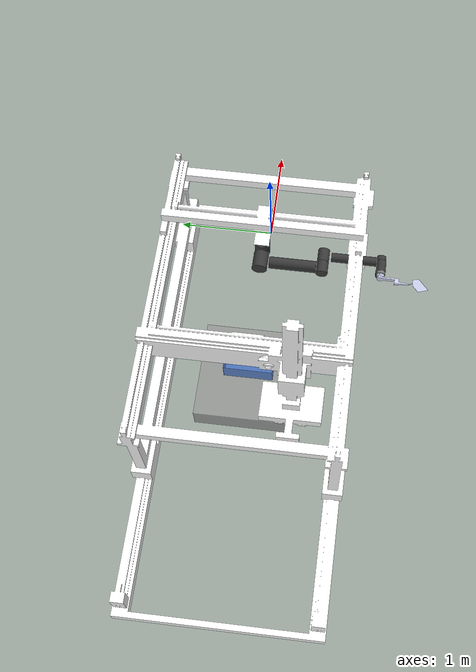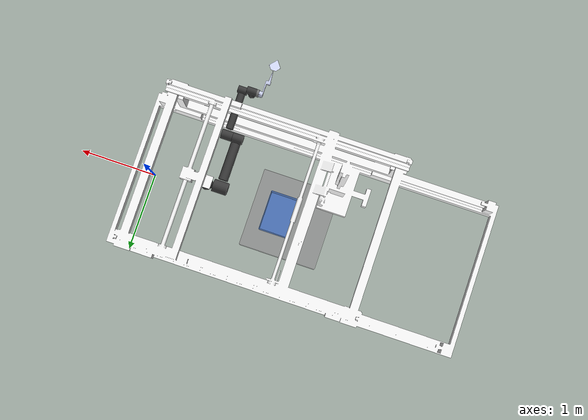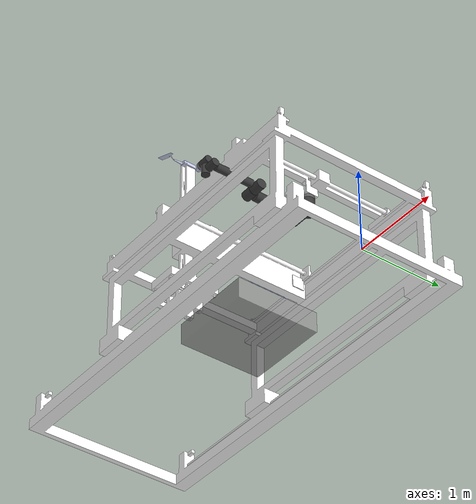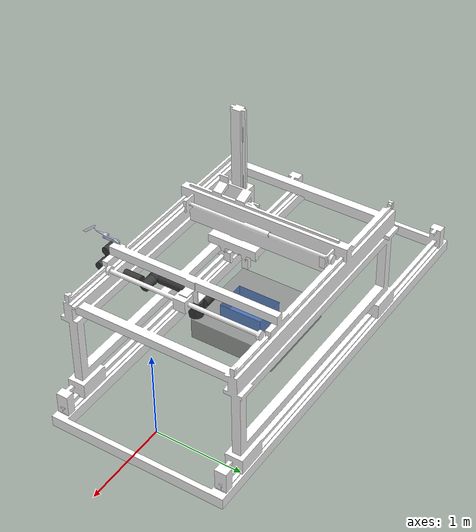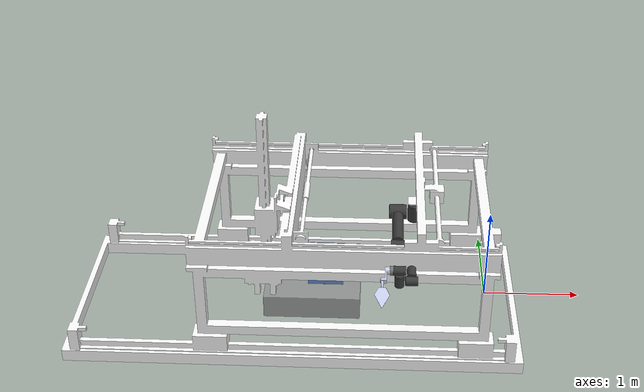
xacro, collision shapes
<?xml version="1.0"?>
<robot name="assembly" xmlns:xacro="http://www.ros.org/wiki/xacro">
  <xacro:arg name="mesh_root" default="package://assembly_rtfg_cpp/urdf/meshes" />
  <xacro:arg name="hardware_backend" default="fake" />

  <material name="block_gray">
    <color rgba="0.6 0.6 0.6 0.8"/>
  </material>
  <material name="basin_blue">
    <color rgba="0.2 0.4 0.8 0.7"/>
  </material>

  <link name="sensor_shovel">
    <visual>
      <origin xyz="0 0 0" rpy="0 0 0" />
      <geometry>
        <mesh filename="$(arg mesh_root)/base_link.STL" />
      </geometry>
      <material name="mat_sensor_shovel">
        <color rgba="0.79216078 0.81961176 0.92941569 1.00000000"/>
      </material>
    </visual>
    <collision>
      <origin xyz="0 0 0" rpy="0 0 0" />
      <geometry>
        <mesh filename="$(arg mesh_root)/base_link.STL" />
      </geometry>
    </collision>
    <inertial>
      <origin xyz="-0.11585 0.0005511 0.051294" rpy="0 0 0" />
      <mass value="2.3" />
      <inertia ixx="0.0005331" ixy="0.0002664" ixz="0.0000158" iyy="0.0080026" iyz="0" izz="0.0082034" />
    </inertial>
  </link>

  <link name="sensor_shovel_tcp">
    <visual>
      <origin xyz="0 0 0" rpy="0 0 0" />
      <geometry>
        <mesh filename="$(arg mesh_root)/shovel_tcp.STL" />
      </geometry>
      <material name="mat_shovel_tcp">
        <color rgba="1.00000000 1.00000000 1.00000000 1.00000000"/>
      </material>
    </visual>
    <collision>
      <origin xyz="0 0 0" rpy="0 0 0" />
      <geometry>
        <mesh filename="$(arg mesh_root)/shovel_tcp.STL" />
      </geometry>
    </collision>
    <inertial>
      <origin xyz="0 -0.0002919 -0.00005" rpy="0 0 0" />
      <mass value="0" />
      <inertia ixx="0" ixy="0" ixz="0" iyy="0" iyz="0" izz="0" />
    </inertial>
  </link>

  <link name="ur10">
    <visual>
      <origin xyz="0 0 0" rpy="0 0 0" />
      <geometry>
        <mesh filename="$(arg mesh_root)/base.dae" />
      </geometry>
      <material name="SWMaterial-2_001">
        <color rgba="0.37255294 0.37255294 0.37255294 1.00000000"/>
      </material>
    </visual>
    <collision>
      <origin xyz="0 0 0.019" rpy="0 0 0" />
      <geometry>
        <cylinder radius="0.075" length="0.038" />
      </geometry>
    </collision>
    <inertial>
      <origin xyz="0 0 0" rpy="0 0 0" />
      <mass value="4" />
      <inertia ixx="0.0061063" ixy="0" ixz="0" iyy="0.0061063" iyz="0" izz="0.01125" />
    </inertial>
  </link>

  <link name="ur10_shoulder">
    <visual>
      <origin xyz="0 0 0" rpy="0 0 0" />
      <geometry>
        <mesh filename="$(arg mesh_root)/shoulder.dae" />
      </geometry>
      <material name="SWMaterial-0">
        <color rgba="0.22353333 0.22353333 0.22353333 1.00000000"/>
      </material>
      <material name="SWMaterial-1">
        <color rgba="0.39216078 0.54118039 0.63921961 1.00000000"/>
      </material>
      <material name="SWMaterial-2">
        <color rgba="0.46274902 0.46274902 0.46274902 1.00000000"/>
      </material>
    </visual>
    <collision>
      <origin xyz="0 0 0" rpy="0 0 0" />
      <geometry>
        <cylinder radius="0.075" length="0.177" />
      </geometry>
    </collision>
    <inertial>
      <origin xyz="0 0 0" rpy="0 0 0" />
      <mass value="7.778" />
      <inertia ixx="0.0314743" ixy="0" ixz="0" iyy="0.0314743" iyz="0" izz="0.0218756" />
    </inertial>
  </link>

  <link name="ur10_upper_arm">
    <visual>
      <origin xyz="0 0 0" rpy="0 0 0" />
      <geometry>
        <mesh filename="$(arg mesh_root)/upperarm.dae" />
      </geometry>
      <material name="SWMaterial-0">
        <color rgba="0.22353333 0.22353333 0.22353333 1.00000000"/>
      </material>
      <material name="SWMaterial-1">
        <color rgba="0.39216078 0.54118039 0.63921961 1.00000000"/>
      </material>
      <material name="SWMaterial-2">
        <color rgba="0.46274902 0.46274902 0.46274902 1.00000000"/>
      </material>
      <material name="SWMaterial-3">
        <color rgba="0.65490588 0.65490588 0.65490588 1.00000000"/>
      </material>
    </visual>
    <collision>
      <origin xyz="0 -0.045 0" rpy="1.5707 0 0" />
      <geometry>
        <cylinder radius="0.075" length="0.177" />
      </geometry>
    </collision>
    <collision>
      <origin xyz="0 -0.0436 0.32" rpy="0 0 1.5707" />
      <geometry>
        <cylinder radius="0.058" length="0.461" />
      </geometry>
    </collision>
    <collision>
      <origin xyz="0 -0.04 0.613" rpy="1.5707 0 0" />
      <geometry>
        <cylinder radius="0.058" length="0.129" />
      </geometry>
    </collision>
    <inertial>
      <origin xyz="0 0 0.306" rpy="0 0 0" />
      <mass value="12.93" />
      <inertia ixx="0.421754" ixy="0" ixz="0" iyy="0.421754" iyz="0" izz="0.0363656" />
    </inertial>
  </link>

  <link name="ur10_forearm">
    <visual>
      <origin xyz="0 0 0" rpy="0 0 0" />
      <geometry>
        <mesh filename="$(arg mesh_root)/forearm.dae" />
      </geometry>
      <material name="SWMaterial-0">
        <color rgba="0.22353333 0.22353333 0.22353333 1.00000000"/>
      </material>
      <material name="SWMaterial-1">
        <color rgba="0.39216078 0.54118039 0.63921961 1.00000000"/>
      </material>
      <material name="SWMaterial-2">
        <color rgba="0.46274902 0.46274902 0.46274902 1.00000000"/>
      </material>
      <material name="SWMaterial-3">
        <color rgba="0.65490588 0.65490588 0.65490588 1.00000000"/>
      </material>
      <material name="SWMaterial-4">
        <color rgba="0.07843529 0.07843529 0.07843529 1.00000000"/>
      </material>
    </visual>
    <collision>
      <origin xyz="0 0 0.001" rpy="1.5707 0 0" />
      <geometry>
        <cylinder radius="0.058" length="0.136" />
      </geometry>
    </collision>
    <collision>
      <origin xyz="0 0 0.305" rpy="0 0 1.5707" />
      <geometry>
        <cylinder radius="0.045" length="0.447" />
      </geometry>
    </collision>
    <collision>
      <origin xyz="0 0.001 0.5735" rpy="1.5707 0 0" />
      <geometry>
        <cylinder radius="0.045" length="0.119" />
      </geometry>
    </collision>
    <inertial>
      <origin xyz="0 0 0.28615" rpy="0 0 0" />
      <mass value="3.87" />
      <inertia ixx="0.11107" ixy="0" ixz="0" iyy="0.11107" iyz="0" izz="0.0108844" />
    </inertial>
  </link>

  <link name="ur10_wrist_1">
    <visual>
      <origin xyz="0 0 0" rpy="0 0 0" />
      <geometry>
        <mesh filename="$(arg mesh_root)/wrist1.dae" />
      </geometry>
      <material name="SWMaterial-0_001">
        <color rgba="0.22353333 0.22353333 0.22353333 1.00000000"/>
      </material>
      <material name="SWMaterial-1_001">
        <color rgba="0.39216078 0.54118039 0.63921961 1.00000000"/>
      </material>
      <material name="SWMaterial-2_001">
        <color rgba="0.46274902 0.46274902 0.46274902 1.00000000"/>
      </material>
    </visual>
    <collision>
      <origin xyz="0 0.115 0.0025" rpy="0 0 0" />
      <geometry>
        <cylinder radius="0.0455" length="0.119" />
      </geometry>
    </collision>
    <inertial>
      <origin xyz="0 0 0" rpy="0 0 0" />
      <mass value="1.96" />
      <inertia ixx="0.0051082" ixy="0" ixz="0" iyy="0.0051082" iyz="0" izz="0.0055125" />
    </inertial>
  </link>

  <link name="ur10_wrist_2">
    <visual>
      <origin xyz="0 0 0" rpy="0 0 0" />
      <geometry>
        <mesh filename="$(arg mesh_root)/wrist2.dae" />
      </geometry>
      <material name="SWMaterial-0_002">
        <color rgba="0.22353333 0.22353333 0.22353333 1.00000000"/>
      </material>
      <material name="SWMaterial-1_002">
        <color rgba="0.39216078 0.54118039 0.63921961 1.00000000"/>
      </material>
      <material name="SWMaterial-2_002">
        <color rgba="0.46274902 0.46274902 0.46274902 1.00000000"/>
      </material>
    </visual>
    <collision>
      <origin xyz="0 0.002 0.11659" rpy="1.5707 0 0" />
      <geometry>
        <cylinder radius="0.0455" length="0.119" />
      </geometry>
    </collision>
    <inertial>
      <origin xyz="0 0 0" rpy="0 0 0" />
      <mass value="1.96" />
      <inertia ixx="0.0051082" ixy="0" ixz="0" iyy="0.0051082" iyz="0" izz="0.0055125" />
    </inertial>
  </link>

  <link name="ur10_wrist_3">
    <visual>
      <origin xyz="0 0 0" rpy="0 0 0" />
      <geometry>
        <mesh filename="$(arg mesh_root)/wrist3.dae" />
      </geometry>
      <material name="SWMaterial-2_003">
        <color rgba="0.46274902 0.46274902 0.46274902 1.00000000"/>
      </material>
    </visual>
    <collision>
      <origin xyz="0 0.0765 0" rpy="1.5707 0 0" />
      <geometry>
        <cylinder radius="0.045" length="0.031" />
      </geometry>
    </collision>
    <inertial>
      <origin xyz="0 0 0" rpy="0 0 0" />
      <mass value="0.202" />
      <inertia ixx="0.0005265" ixy="0" ixz="0" iyy="0.0005265" iyz="0" izz="0.0005681" />
    </inertial>
  </link>

  <link name="base_jizuo">
    <visual>
      <origin xyz="0 0 0" rpy="0 0 0" />
      <geometry>
        <mesh filename="$(arg mesh_root)/base_link_world_jizuo.STL" />
      </geometry>
      <material name="mat_base_jizuo">
        <color rgba="1.00000000 1.00000000 1.00000000 1.00000000"/>
      </material>
    </visual>
    <collision>
      <origin xyz="0 0 0" rpy="0 0 0" />
      <geometry>
        <mesh filename="$(arg mesh_root)/base_link_world_jizuo.STL" />
      </geometry>
    </collision>
    <inertial>
      <origin xyz="-1.8696 -0.046752 0.24794" rpy="0 0 0" />
      <mass value="1499.1" />
      <inertia ixx="1126.8" ixy="-0.036857" ixz="0.0017432" iyy="2608.5" iyz="-18.236" izz="3614.6" />
    </inertial>
  </link>

  <link name="base_jizuo_base_ur10_with_dizuo">
    <visual>
      <origin xyz="0 0 0" rpy="0 0 0" />
      <geometry>
        <mesh filename="$(arg mesh_root)/base_ur10_with_dizuo.STL" />
      </geometry>
      <material name="mat_base_ur10_with_dizuo">
        <color rgba="1.00000000 1.00000000 1.00000000 1.00000000"/>
      </material>
    </visual>
    <collision>
      <origin xyz="0 0 0" rpy="0 0 0" />
      <geometry>
        <mesh filename="$(arg mesh_root)/base_ur10_with_dizuo.STL" />
      </geometry>
    </collision>
    <inertial>
      <origin xyz="0 0 0.005" rpy="0 0 0" />
      <mass value="0.225" />
      <inertia ixx="0.0004237" ixy="0" ixz="0" iyy="0.0004237" iyz="0" izz="0.0008437" />
    </inertial>
  </link>

  <link name="block_with_basin_frame" />

  <link name="block_basin_base_link" />

  <link name="block_basin_block">
    <visual>
      <geometry>
        <box size="1.0 1.0 0.25"/>
      </geometry>
      <material name="block_gray"/>
    </visual>
    <collision>
      <geometry>
        <box size="1.0 1.0 0.25"/>
      </geometry>
    </collision>
  </link>

  <link name="block_basin_bottom">
    <visual>
      <geometry>
        <box size="0.37 0.50 0.003"/>
      </geometry>
      <material name="basin_blue"/>
    </visual>
    <collision>
      <geometry>
        <box size="0.37 0.50 0.003"/>
      </geometry>
    </collision>
  </link>

  <link name="block_basin_front_wall">
    <visual>
      <geometry>
        <box size="0.37 0.003 0.18"/>
      </geometry>
      <material name="basin_blue"/>
    </visual>
    <collision>
      <geometry>
        <box size="0.37 0.003 0.18"/>
      </geometry>
    </collision>
  </link>

  <link name="block_basin_back_wall">
    <visual>
      <geometry>
        <box size="0.37 0.003 0.18"/>
      </geometry>
      <material name="basin_blue"/>
    </visual>
    <collision>
      <geometry>
        <box size="0.37 0.003 0.18"/>
      </geometry>
    </collision>
  </link>

  <link name="block_basin_left_wall">
    <visual>
      <geometry>
        <box size="0.003 0.494 0.18"/>
      </geometry>
      <material name="basin_blue"/>
    </visual>
    <collision>
      <geometry>
        <box size="0.003 0.494 0.18"/>
      </geometry>
    </collision>
  </link>

  <link name="block_basin_right_wall">
    <visual>
      <geometry>
        <box size="0.003 0.494 0.18"/>
      </geometry>
      <material name="basin_blue"/>
    </visual>
    <collision>
      <geometry>
        <box size="0.003 0.494 0.18"/>
      </geometry>
    </collision>
  </link>

  <joint name="sensor_shovel_tcp_fixed" type="fixed">
    <parent link="sensor_shovel" />
    <child link="sensor_shovel_tcp" />
    <origin xyz="-0.47377 0.077109 0.0733" rpy="-1.5708 1.5708 -0.61087" />
  </joint>

  <joint name="ur10_shoulder_pan" type="revolute">
    <parent link="ur10" />
    <child link="ur10_shoulder" />
    <origin xyz="0 0 0.1273" rpy="0 0 0" />
    <axis xyz="0 0 1" />
    <limit lower="-6.28319" upper="6.28319" effort="330" velocity="2.16" />
  </joint>

  <joint name="ur10_shoulder_lift" type="revolute">
    <parent link="ur10_shoulder" />
    <child link="ur10_upper_arm" />
    <origin xyz="0 0.220941 0" rpy="0 1.57079 0" />
    <axis xyz="0 1 0" />
    <limit lower="-6.28319" upper="6.28319" effort="330" velocity="2.16" />
  </joint>

  <joint name="ur10_elbow" type="revolute">
    <parent link="ur10_upper_arm" />
    <child link="ur10_forearm" />
    <origin xyz="-0.0000039 -0.1719 0.612" rpy="0 0 0" />
    <axis xyz="0 1 0" />
    <limit lower="-6.28319" upper="6.28319" effort="150" velocity="3.15" />
  </joint>

  <joint name="ur10_wrist_1" type="revolute">
    <parent link="ur10_forearm" />
    <child link="ur10_wrist_1" />
    <origin xyz="-0.0000036 0 0.5723" rpy="0 1.5707895 0.0000027" />
    <axis xyz="0 1 0" />
    <limit lower="-6.28319" upper="6.28319" effort="54" velocity="3.2" />
  </joint>

  <joint name="ur10_wrist_2" type="revolute">
    <parent link="ur10_wrist_1" />
    <child link="ur10_wrist_2" />
    <origin xyz="0.0000003 0.1149 0.0000003" rpy="0 0 0" />
    <axis xyz="0 0 -1" />
    <limit lower="-6.28319" upper="6.28319" effort="54" velocity="3.2" />
  </joint>

  <joint name="ur10_wrist_3" type="revolute">
    <parent link="ur10_wrist_2" />
    <child link="ur10_wrist_3" />
    <origin xyz="0 -0.0000003 0.1157" rpy="0 0 0" />
    <axis xyz="0 1 0" />
    <limit lower="-6.28319" upper="6.28319" effort="54" velocity="3.2" />
  </joint>

  <joint name="base_jizuo_square_place" type="fixed">
    <parent link="base_jizuo" />
    <child link="base_jizuo_base_ur10_with_dizuo" />
    <origin xyz="-0.78172 -0.025653 1.1638" rpy="3.1416 0 -1.5708" />
  </joint>

  <joint name="ur10-sensor_shovel" type="fixed">
    <parent link="ur10_wrist_3" />
    <child link="sensor_shovel" />
    <origin xyz="0 0.09 0" rpy="-1.5707963 0 0" quat_xyzw="-0.5 0.5 0.5 0.5" />
  </joint>

  <joint name="base_jizuo-ur10" type="fixed">
    <parent link="base_jizuo_base_ur10_with_dizuo" />
    <child link="ur10" />
    <origin xyz="0 0 0" rpy=" 0 0 0" quat_xyzw="0 0 0.70710678 0.70710678" />
  </joint>

  <joint name="base_jizuo_to_block_with_basin_frame" type="fixed">
    <parent link="base_jizuo" />
    <child link="block_with_basin_frame" />
    <origin xyz="-1.830000 0.000000 0.000000" rpy="0.000000000000 0.000000000000 3.141592653590" />
  </joint>

  <joint name="block_frame_to_base" type="fixed">
    <parent link="block_with_basin_frame" />
    <child link="block_basin_base_link" />
    <origin xyz="0 0 0" rpy="0 0 0" />
  </joint>

  <joint name="block_joint" type="fixed">
    <parent link="block_basin_base_link" />
    <child link="block_basin_block" />
    <origin xyz="0 0 0.125" rpy="0 0 0" />
  </joint>

  <joint name="basin_base_joint" type="fixed">
    <parent link="block_basin_base_link" />
    <child link="block_basin_bottom" />
    <origin xyz="-0.135 0 0.25" rpy="0 0 0" />
  </joint>

  <joint name="basin_front_joint" type="fixed">
    <parent link="block_basin_bottom" />
    <child link="block_basin_front_wall" />
    <origin xyz="0 0.2485 0.09" rpy="0 0 0" />
  </joint>

  <joint name="basin_back_joint" type="fixed">
    <parent link="block_basin_bottom" />
    <child link="block_basin_back_wall" />
    <origin xyz="0 -0.2485 0.09" rpy="0 0 0" />
  </joint>

  <joint name="basin_left_joint" type="fixed">
    <parent link="block_basin_bottom" />
    <child link="block_basin_left_wall" />
    <origin xyz="-0.1835 0 0.09" rpy="0 0 0" />
  </joint>

  <joint name="basin_right_joint" type="fixed">
    <parent link="block_basin_bottom" />
    <child link="block_basin_right_wall" />
    <origin xyz="0.1835 0 0.09" rpy="0 0 0" />
  </joint>

  <xacro:arg name="ros_profile" default="ros2" />
  <xacro:arg name="ros_hardware_interface" default="position" />
  <xacro:property name="ros_profile_arg" value="$(arg ros_profile)" />
  <xacro:property name="ros_hardware_interface_arg" value="$(arg ros_hardware_interface)" />

  <xacro:if value="${ros_profile_arg == 'ros1' and ros_hardware_interface_arg == 'effort'}">
      <transmission name="ur10_shoulder_pan_trans">
        <type>transmission_interface/SimpleTransmission</type>
        <joint name="ur10_shoulder_pan">
          <hardwareInterface>hardware_interface/EffortJointInterface</hardwareInterface>
        </joint>
        <actuator name="ur10_shoulder_pan_motor">
          <hardwareInterface>hardware_interface/EffortJointInterface</hardwareInterface>
          <mechanicalReduction>1</mechanicalReduction>
        </actuator>
      </transmission>

      <transmission name="ur10_shoulder_lift_trans">
        <type>transmission_interface/SimpleTransmission</type>
        <joint name="ur10_shoulder_lift">
          <hardwareInterface>hardware_interface/EffortJointInterface</hardwareInterface>
        </joint>
        <actuator name="ur10_shoulder_lift_motor">
          <hardwareInterface>hardware_interface/EffortJointInterface</hardwareInterface>
          <mechanicalReduction>1</mechanicalReduction>
        </actuator>
      </transmission>

      <transmission name="ur10_elbow_trans">
        <type>transmission_interface/SimpleTransmission</type>
        <joint name="ur10_elbow">
          <hardwareInterface>hardware_interface/EffortJointInterface</hardwareInterface>
        </joint>
        <actuator name="ur10_elbow_motor">
          <hardwareInterface>hardware_interface/EffortJointInterface</hardwareInterface>
          <mechanicalReduction>1</mechanicalReduction>
        </actuator>
      </transmission>

      <transmission name="ur10_wrist_1_trans">
        <type>transmission_interface/SimpleTransmission</type>
        <joint name="ur10_wrist_1">
          <hardwareInterface>hardware_interface/EffortJointInterface</hardwareInterface>
        </joint>
        <actuator name="ur10_wrist_1_motor">
          <hardwareInterface>hardware_interface/EffortJointInterface</hardwareInterface>
          <mechanicalReduction>1</mechanicalReduction>
        </actuator>
      </transmission>

      <transmission name="ur10_wrist_2_trans">
        <type>transmission_interface/SimpleTransmission</type>
        <joint name="ur10_wrist_2">
          <hardwareInterface>hardware_interface/EffortJointInterface</hardwareInterface>
        </joint>
        <actuator name="ur10_wrist_2_motor">
          <hardwareInterface>hardware_interface/EffortJointInterface</hardwareInterface>
          <mechanicalReduction>1</mechanicalReduction>
        </actuator>
      </transmission>

      <transmission name="ur10_wrist_3_trans">
        <type>transmission_interface/SimpleTransmission</type>
        <joint name="ur10_wrist_3">
          <hardwareInterface>hardware_interface/EffortJointInterface</hardwareInterface>
        </joint>
        <actuator name="ur10_wrist_3_motor">
          <hardwareInterface>hardware_interface/EffortJointInterface</hardwareInterface>
          <mechanicalReduction>1</mechanicalReduction>
        </actuator>
      </transmission>

      <gazebo>
        <plugin name="gazebo_ros_control" filename="libgazebo_ros_control.so">
          <robotNamespace>/assembly_gazebo</robotNamespace>
          <robotSimType>gazebo_ros_control/DefaultRobotHWSim</robotSimType>
        </plugin>
      </gazebo>

  </xacro:if>

  <xacro:if value="${ros_profile_arg == 'ros1' and ros_hardware_interface_arg == 'position'}">
      <transmission name="ur10_shoulder_pan_trans">
        <type>transmission_interface/SimpleTransmission</type>
        <joint name="ur10_shoulder_pan">
          <hardwareInterface>hardware_interface/PositionJointInterface</hardwareInterface>
        </joint>
        <actuator name="ur10_shoulder_pan_motor">
          <hardwareInterface>hardware_interface/PositionJointInterface</hardwareInterface>
          <mechanicalReduction>1</mechanicalReduction>
        </actuator>
      </transmission>

      <transmission name="ur10_shoulder_lift_trans">
        <type>transmission_interface/SimpleTransmission</type>
        <joint name="ur10_shoulder_lift">
          <hardwareInterface>hardware_interface/PositionJointInterface</hardwareInterface>
        </joint>
        <actuator name="ur10_shoulder_lift_motor">
          <hardwareInterface>hardware_interface/PositionJointInterface</hardwareInterface>
          <mechanicalReduction>1</mechanicalReduction>
        </actuator>
      </transmission>

      <transmission name="ur10_elbow_trans">
        <type>transmission_interface/SimpleTransmission</type>
        <joint name="ur10_elbow">
          <hardwareInterface>hardware_interface/PositionJointInterface</hardwareInterface>
        </joint>
        <actuator name="ur10_elbow_motor">
          <hardwareInterface>hardware_interface/PositionJointInterface</hardwareInterface>
          <mechanicalReduction>1</mechanicalReduction>
        </actuator>
      </transmission>

      <transmission name="ur10_wrist_1_trans">
        <type>transmission_interface/SimpleTransmission</type>
        <joint name="ur10_wrist_1">
          <hardwareInterface>hardware_interface/PositionJointInterface</hardwareInterface>
        </joint>
        <actuator name="ur10_wrist_1_motor">
          <hardwareInterface>hardware_interface/PositionJointInterface</hardwareInterface>
          <mechanicalReduction>1</mechanicalReduction>
        </actuator>
      </transmission>

      <transmission name="ur10_wrist_2_trans">
        <type>transmission_interface/SimpleTransmission</type>
        <joint name="ur10_wrist_2">
          <hardwareInterface>hardware_interface/PositionJointInterface</hardwareInterface>
        </joint>
        <actuator name="ur10_wrist_2_motor">
          <hardwareInterface>hardware_interface/PositionJointInterface</hardwareInterface>
          <mechanicalReduction>1</mechanicalReduction>
        </actuator>
      </transmission>

      <transmission name="ur10_wrist_3_trans">
        <type>transmission_interface/SimpleTransmission</type>
        <joint name="ur10_wrist_3">
          <hardwareInterface>hardware_interface/PositionJointInterface</hardwareInterface>
        </joint>
        <actuator name="ur10_wrist_3_motor">
          <hardwareInterface>hardware_interface/PositionJointInterface</hardwareInterface>
          <mechanicalReduction>1</mechanicalReduction>
        </actuator>
      </transmission>

      <gazebo>
        <plugin name="gazebo_ros_control" filename="libgazebo_ros_control.so">
          <robotNamespace>/assembly_gazebo</robotNamespace>
          <robotSimType>gazebo_ros_control/DefaultRobotHWSim</robotSimType>
        </plugin>
      </gazebo>

  </xacro:if>

  <xacro:if value="${ros_profile_arg == 'ros1' and ros_hardware_interface_arg == 'velocity'}">
      <transmission name="ur10_shoulder_pan_trans">
        <type>transmission_interface/SimpleTransmission</type>
        <joint name="ur10_shoulder_pan">
          <hardwareInterface>hardware_interface/VelocityJointInterface</hardwareInterface>
        </joint>
        <actuator name="ur10_shoulder_pan_motor">
          <hardwareInterface>hardware_interface/VelocityJointInterface</hardwareInterface>
          <mechanicalReduction>1</mechanicalReduction>
        </actuator>
      </transmission>

      <transmission name="ur10_shoulder_lift_trans">
        <type>transmission_interface/SimpleTransmission</type>
        <joint name="ur10_shoulder_lift">
          <hardwareInterface>hardware_interface/VelocityJointInterface</hardwareInterface>
        </joint>
        <actuator name="ur10_shoulder_lift_motor">
          <hardwareInterface>hardware_interface/VelocityJointInterface</hardwareInterface>
          <mechanicalReduction>1</mechanicalReduction>
        </actuator>
      </transmission>

      <transmission name="ur10_elbow_trans">
        <type>transmission_interface/SimpleTransmission</type>
        <joint name="ur10_elbow">
          <hardwareInterface>hardware_interface/VelocityJointInterface</hardwareInterface>
        </joint>
        <actuator name="ur10_elbow_motor">
          <hardwareInterface>hardware_interface/VelocityJointInterface</hardwareInterface>
          <mechanicalReduction>1</mechanicalReduction>
        </actuator>
      </transmission>

      <transmission name="ur10_wrist_1_trans">
        <type>transmission_interface/SimpleTransmission</type>
        <joint name="ur10_wrist_1">
          <hardwareInterface>hardware_interface/VelocityJointInterface</hardwareInterface>
        </joint>
        <actuator name="ur10_wrist_1_motor">
          <hardwareInterface>hardware_interface/VelocityJointInterface</hardwareInterface>
          <mechanicalReduction>1</mechanicalReduction>
        </actuator>
      </transmission>

      <transmission name="ur10_wrist_2_trans">
        <type>transmission_interface/SimpleTransmission</type>
        <joint name="ur10_wrist_2">
          <hardwareInterface>hardware_interface/VelocityJointInterface</hardwareInterface>
        </joint>
        <actuator name="ur10_wrist_2_motor">
          <hardwareInterface>hardware_interface/VelocityJointInterface</hardwareInterface>
          <mechanicalReduction>1</mechanicalReduction>
        </actuator>
      </transmission>

      <transmission name="ur10_wrist_3_trans">
        <type>transmission_interface/SimpleTransmission</type>
        <joint name="ur10_wrist_3">
          <hardwareInterface>hardware_interface/VelocityJointInterface</hardwareInterface>
        </joint>
        <actuator name="ur10_wrist_3_motor">
          <hardwareInterface>hardware_interface/VelocityJointInterface</hardwareInterface>
          <mechanicalReduction>1</mechanicalReduction>
        </actuator>
      </transmission>

      <gazebo>
        <plugin name="gazebo_ros_control" filename="libgazebo_ros_control.so">
          <robotNamespace>/assembly_gazebo</robotNamespace>
          <robotSimType>gazebo_ros_control/DefaultRobotHWSim</robotSimType>
        </plugin>
      </gazebo>

  </xacro:if>

  <xacro:if value="${ros_profile_arg == 'ros2' and ros_hardware_interface_arg == 'effort'}">
      <ros2_control name="assembly" type="system">
        <hardware>
          <plugin>mock_components/GenericSystem</plugin>
            <param name="mock_sensor_commands">false</param>
        </hardware>
        <joint name="ur10_shoulder_pan">
          <command_interface name="effort"/>
          <state_interface name="position">
            <param name="initial_value">2.0474984645843506</param>
          </state_interface>
          <state_interface name="velocity"/>
          <state_interface name="effort"/>
        </joint>
        <joint name="ur10_shoulder_lift">
          <command_interface name="effort"/>
          <state_interface name="position">
            <param name="initial_value">0.21928656101226807</param>
          </state_interface>
          <state_interface name="velocity"/>
          <state_interface name="effort"/>
        </joint>
        <joint name="ur10_elbow">
          <command_interface name="effort"/>
          <state_interface name="position">
            <param name="initial_value">-1.9548214117633265</param>
          </state_interface>
          <state_interface name="velocity"/>
          <state_interface name="effort"/>
        </joint>
        <joint name="ur10_wrist_1">
          <command_interface name="effort"/>
          <state_interface name="position">
            <param name="initial_value">-0.35923797289003545</param>
          </state_interface>
          <state_interface name="velocity"/>
          <state_interface name="effort"/>
        </joint>
        <joint name="ur10_wrist_2">
          <command_interface name="effort"/>
          <state_interface name="position">
            <param name="initial_value">2.0502676963806152</param>
          </state_interface>
          <state_interface name="velocity"/>
          <state_interface name="effort"/>
        </joint>
        <joint name="ur10_wrist_3">
          <command_interface name="effort"/>
          <state_interface name="position">
            <param name="initial_value">1.0330829620361328</param>
          </state_interface>
          <state_interface name="velocity"/>
          <state_interface name="effort"/>
        </joint>
      </ros2_control>

  </xacro:if>

  <xacro:if value="${ros_profile_arg == 'ros2' and ros_hardware_interface_arg == 'position'}">
      <ros2_control name="assembly" type="system">
        <hardware>
          <plugin>mock_components/GenericSystem</plugin>
            <param name="mock_sensor_commands">false</param>
        </hardware>
        <joint name="ur10_shoulder_pan">
          <command_interface name="position"/>
          <state_interface name="position">
            <param name="initial_value">2.0474984645843506</param>
          </state_interface>
          <state_interface name="velocity"/>
        </joint>
        <joint name="ur10_shoulder_lift">
          <command_interface name="position"/>
          <state_interface name="position">
            <param name="initial_value">0.21928656101226807</param>
          </state_interface>
          <state_interface name="velocity"/>
        </joint>
        <joint name="ur10_elbow">
          <command_interface name="position"/>
          <state_interface name="position">
            <param name="initial_value">-1.9548214117633265</param>
          </state_interface>
          <state_interface name="velocity"/>
        </joint>
        <joint name="ur10_wrist_1">
          <command_interface name="position"/>
          <state_interface name="position">
            <param name="initial_value">-0.35923797289003545</param>
          </state_interface>
          <state_interface name="velocity"/>
        </joint>
        <joint name="ur10_wrist_2">
          <command_interface name="position"/>
          <state_interface name="position">
            <param name="initial_value">2.0502676963806152</param>
          </state_interface>
          <state_interface name="velocity"/>
        </joint>
        <joint name="ur10_wrist_3">
          <command_interface name="position"/>
          <state_interface name="position">
            <param name="initial_value">1.0330829620361328</param>
          </state_interface>
          <state_interface name="velocity"/>
        </joint>
      </ros2_control>

  </xacro:if>

  <xacro:if value="${ros_profile_arg == 'ros2' and ros_hardware_interface_arg == 'velocity'}">
      <ros2_control name="assembly" type="system">
        <hardware>
          <plugin>mock_components/GenericSystem</plugin>
            <param name="mock_sensor_commands">false</param>
        </hardware>
        <joint name="ur10_shoulder_pan">
          <command_interface name="velocity"/>
          <state_interface name="position">
            <param name="initial_value">2.0474984645843506</param>
          </state_interface>
          <state_interface name="velocity"/>
        </joint>
        <joint name="ur10_shoulder_lift">
          <command_interface name="velocity"/>
          <state_interface name="position">
            <param name="initial_value">0.21928656101226807</param>
          </state_interface>
          <state_interface name="velocity"/>
        </joint>
        <joint name="ur10_elbow">
          <command_interface name="velocity"/>
          <state_interface name="position">
            <param name="initial_value">-1.9548214117633265</param>
          </state_interface>
          <state_interface name="velocity"/>
        </joint>
        <joint name="ur10_wrist_1">
          <command_interface name="velocity"/>
          <state_interface name="position">
            <param name="initial_value">-0.35923797289003545</param>
          </state_interface>
          <state_interface name="velocity"/>
        </joint>
        <joint name="ur10_wrist_2">
          <command_interface name="velocity"/>
          <state_interface name="position">
            <param name="initial_value">2.0502676963806152</param>
          </state_interface>
          <state_interface name="velocity"/>
        </joint>
        <joint name="ur10_wrist_3">
          <command_interface name="velocity"/>
          <state_interface name="position">
            <param name="initial_value">1.0330829620361328</param>
          </state_interface>
          <state_interface name="velocity"/>
        </joint>
      </ros2_control>

  </xacro:if>
</robot>
